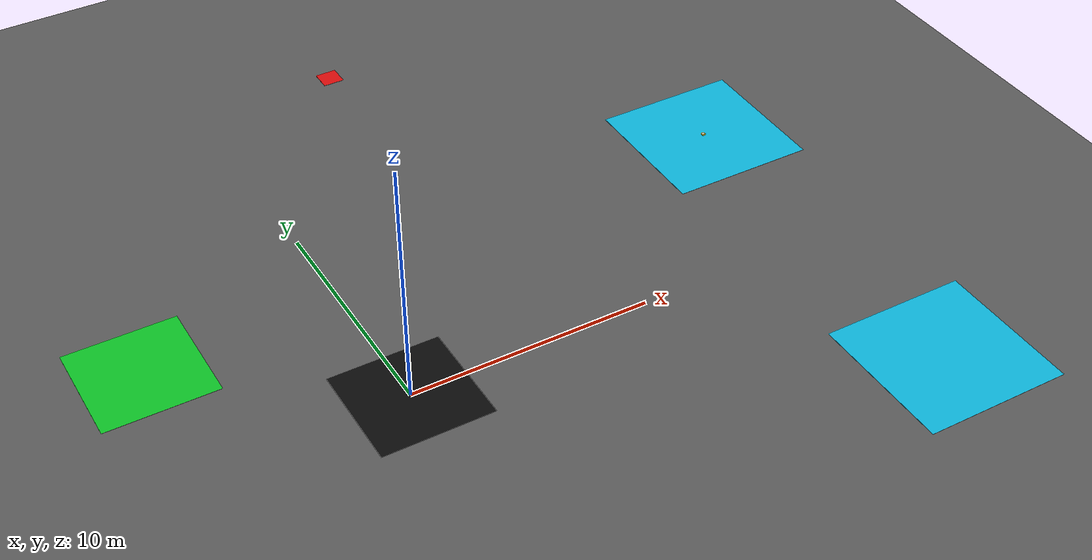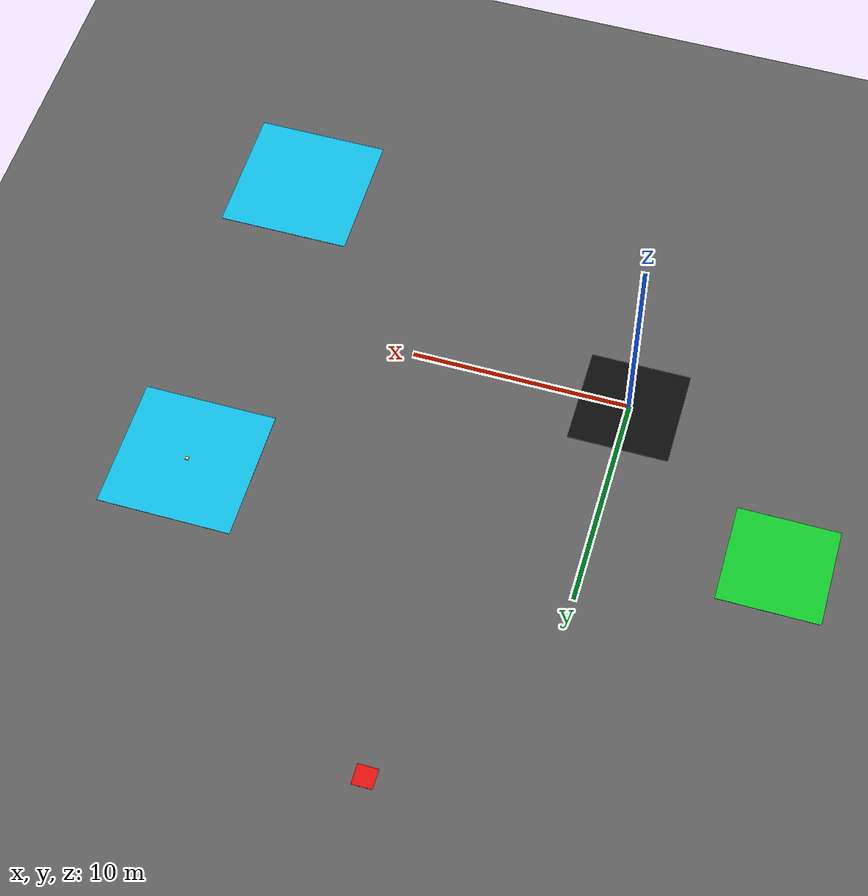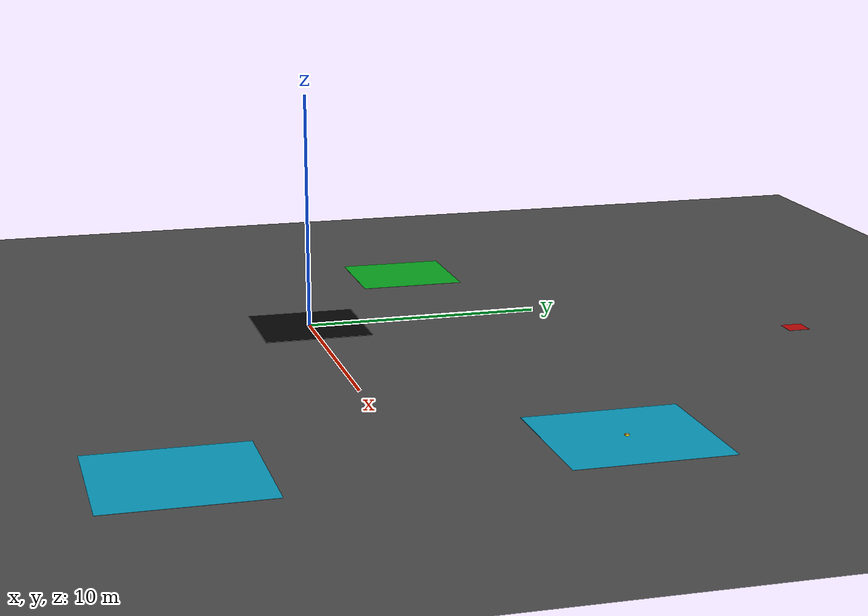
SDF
<sdf version="1.9">
 <world name="search_delivery">
  <gravity>0 0 -9.8</gravity>
  <physics name="competition_physics" type="ode">
   <max_step_size>0.001</max_step_size>
   <real_time_factor>1.0</real_time_factor>
   <real_time_update_rate>1000</real_time_update_rate>
  </physics>
  <scene><ambient>0.4 0.4 0.4 1</ambient><background>0.7 0.8 0.9 1</background><shadows>false</shadows></scene>
  <light name="sun" type="directional">
   <pose>0 0 10 0 0 0</pose>
   <cast_shadows>false</cast_shadows>
   <diffuse>0.8 0.8 0.8 1</diffuse>
   <specular>0.2 0.2 0.2 1</specular>
   <direction>-0.5 0.1 -0.9</direction>
  </light>
  <plugin filename="gz-sim-physics-system" name="gz::sim::systems::Physics"/>
  <plugin filename="gz-sim-sensors-system" name="gz::sim::systems::Sensors">
   <render_engine>ogre2</render_engine>
  </plugin>
  <plugin filename="gz-sim-imu-system" name="gz::sim::systems::Imu"/>
  <plugin filename="gz-sim-user-commands-system" name="gz::sim::systems::UserCommands"/>
  <plugin filename="gz-sim-scene-broadcaster-system" name="gz::sim::systems::SceneBroadcaster"/>
  <plugin filename="gz-sim-contact-system" name="gz::sim::systems::Contact"/>
  <model name="ground_plane">
   <static>true</static>
   <link name="ground_link">
    <collision name="ground_collision">
     <geometry><plane><normal>0 0 1</normal><size>60 60</size></plane></geometry>
    </collision>
    <visual name="ground_visual">
     <geometry><plane><normal>0 0 1</normal><size>60 60</size></plane></geometry>
     <material><ambient>0.25 0.25 0.25 1</ambient><diffuse>0.35 0.35 0.35 1</diffuse></material>
    </visual>
   </link>
  </model>
  <model name="pad_h">
   <static>true</static>
   <pose>0 0 0.005 0 0 0</pose>
   <link name="pad_link">
    <collision name="tarp_collision"><geometry><box><size>4.572 4.572 0.01</size></box></geometry></collision>
    <visual name="tarp_visual">
     <geometry><box><size>4.572 4.572 0.01</size></box></geometry>
     <material><ambient>0.04 0.04 0.04 1</ambient><diffuse>0.04 0.04 0.04 1</diffuse></material>
    </visual>
   </link>
  </model>
  <model name="pad_l">
   <static>true</static>
   <pose>-8 6 0.005 0 0 0</pose>
   <link name="pad_link">
    <collision name="tarp_collision"><geometry><box><size>4.572 4.572 0.01</size></box></geometry></collision>
    <visual name="tarp_visual">
     <geometry><box><size>4.572 4.572 0.01</size></box></geometry>
     <material><ambient>0.05 0.75 0.15 1</ambient><diffuse>0.05 0.75 0.15 1</diffuse></material>
    </visual>
   </link>
  </model>
  <model name="pad_f2">
   <static>true</static>
   <pose>6 20 0.005 0 0 0</pose>
   <link name="pad_link">
    <collision name="tarp_collision"><geometry><box><size>0.9144 0.9144 0.01</size></box></geometry></collision>
    <visual name="tarp_visual">
     <geometry><box><size>0.9144 0.9144 0.01</size></box></geometry>
     <material><ambient>0.85 0.05 0.05 1</ambient><diffuse>0.85 0.05 0.05 1</diffuse></material>
    </visual>
   </link>
  </model>
  <model name="pad_wa">
   <static>true</static>
   <pose>18 8 0.005 0 0 0</pose>
   <link name="pad_link">
    <collision name="tarp_collision"><geometry><box><size>6.096 6.096 0.01</size></box></geometry></collision>
    <visual name="tarp_visual">
     <geometry><box><size>6.096 6.096 0.01</size></box></geometry>
     <material><ambient>0.05 0.70 0.85 1</ambient><diffuse>0.05 0.70 0.85 1</diffuse></material>
    </visual>
   </link>
  </model>
  <model name="pad_wm">
   <static>true</static>
   <pose>18 -8 0.005 0 0 0</pose>
   <link name="pad_link">
    <collision name="tarp_collision"><geometry><box><size>6.096 6.096 0.01</size></box></geometry></collision>
    <visual name="tarp_visual">
     <geometry><box><size>6.096 6.096 0.01</size></box></geometry>
     <material><ambient>0.05 0.70 0.85 1</ambient><diffuse>0.05 0.70 0.85 1</diffuse></material>
    </visual>
   </link>
  </model>
  <include><uri>model://payload_3</uri><name>payload_3</name><pose>18 8 0.0354 0 0 0</pose></include>
  <model name="observer_station">
   <pose>9 10 30 0 1.570796327 0</pose>
   <static>true</static>
   <link name="observer_link">
    <sensor name="observer_camera" type="camera">
     <topic>/gazebo/private/camera/observer/image</topic>
     <always_on>true</always_on>
     <update_rate>20</update_rate>
     <visualize>false</visualize>
     <camera>
      <horizontal_fov>0.761012754</horizontal_fov>
      <image><width>1280</width><height>960</height><format>R8G8B8</format></image>
      <clip><near>0.1</near><far>300</far></clip>
     </camera>
    </sensor>
   </link>
  </model>
 </world>
</sdf>

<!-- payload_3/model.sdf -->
<sdf version="1.9">
  <model name="payload_3">
    <link name="body">
      <inertial>
        <mass>1.133981</mass>
        <inertia>
          <ixx>0.002439</ixx>
          <iyy>0.002439</iyy>
          <izz>0.00439</izz>
          <ixy>0</ixy>
          <ixz>0</ixz>
          <iyz>0</iyz>
        </inertia>
      </inertial>
      <collision name="body_collision">
        <geometry>
          <box>
            <size>0.1524 0.1524 0.0508</size>
          </box>
        </geometry>
      </collision>
      <visual name="body_visual">
        <geometry>
          <box>
            <size>0.1524 0.1524 0.0508</size>
          </box>
        </geometry>
        <material>
          <ambient>0.95 0.80 0.05 1</ambient>
          <diffuse>0.95 0.80 0.05 1</diffuse>
        </material>
      </visual>
      <visual name="marker">
        <pose>0 0 0.0264 0 0 0</pose>
        <geometry>
          <plane>
            <normal>0 0 1</normal>
            <size>0.1 0.1</size>
          </plane>
        </geometry>
        <material>
          <ambient>1 1 1 1</ambient>
          <diffuse>1 1 1 1</diffuse>
          <specular>0 0 0 1</specular>
          <pbr>
            <metal>
              <albedo_map>materials/textures/marker_3.png</albedo_map>
              <roughness>1</roughness>
              <metalness>0</metalness>
            </metal>
          </pbr>
        </material>
      </visual>
      <sensor name="ground_contact" type="contact">
        <topic>/gazebo/private/payload/3/contacts</topic>
        <always_on>true</always_on>
        <update_rate>20</update_rate>
        <contact>
          <collision>body_collision</collision>
        </contact>
      </sensor>
    </link>
    <plugin filename="gz-sim-pose-publisher-system" name="gz::sim::systems::PosePublisher">
      <publish_link_pose>false</publish_link_pose>
      <publish_visual_pose>false</publish_visual_pose>
      <publish_collision_pose>false</publish_collision_pose>
      <publish_sensor_pose>false</publish_sensor_pose>
      <publish_model_pose>true</publish_model_pose>
      <publish_nested_model_pose>false</publish_nested_model_pose>
      <use_pose_vector_msg>true</use_pose_vector_msg>
      <update_frequency>20</update_frequency>
    </plugin>
  </model>
</sdf>
